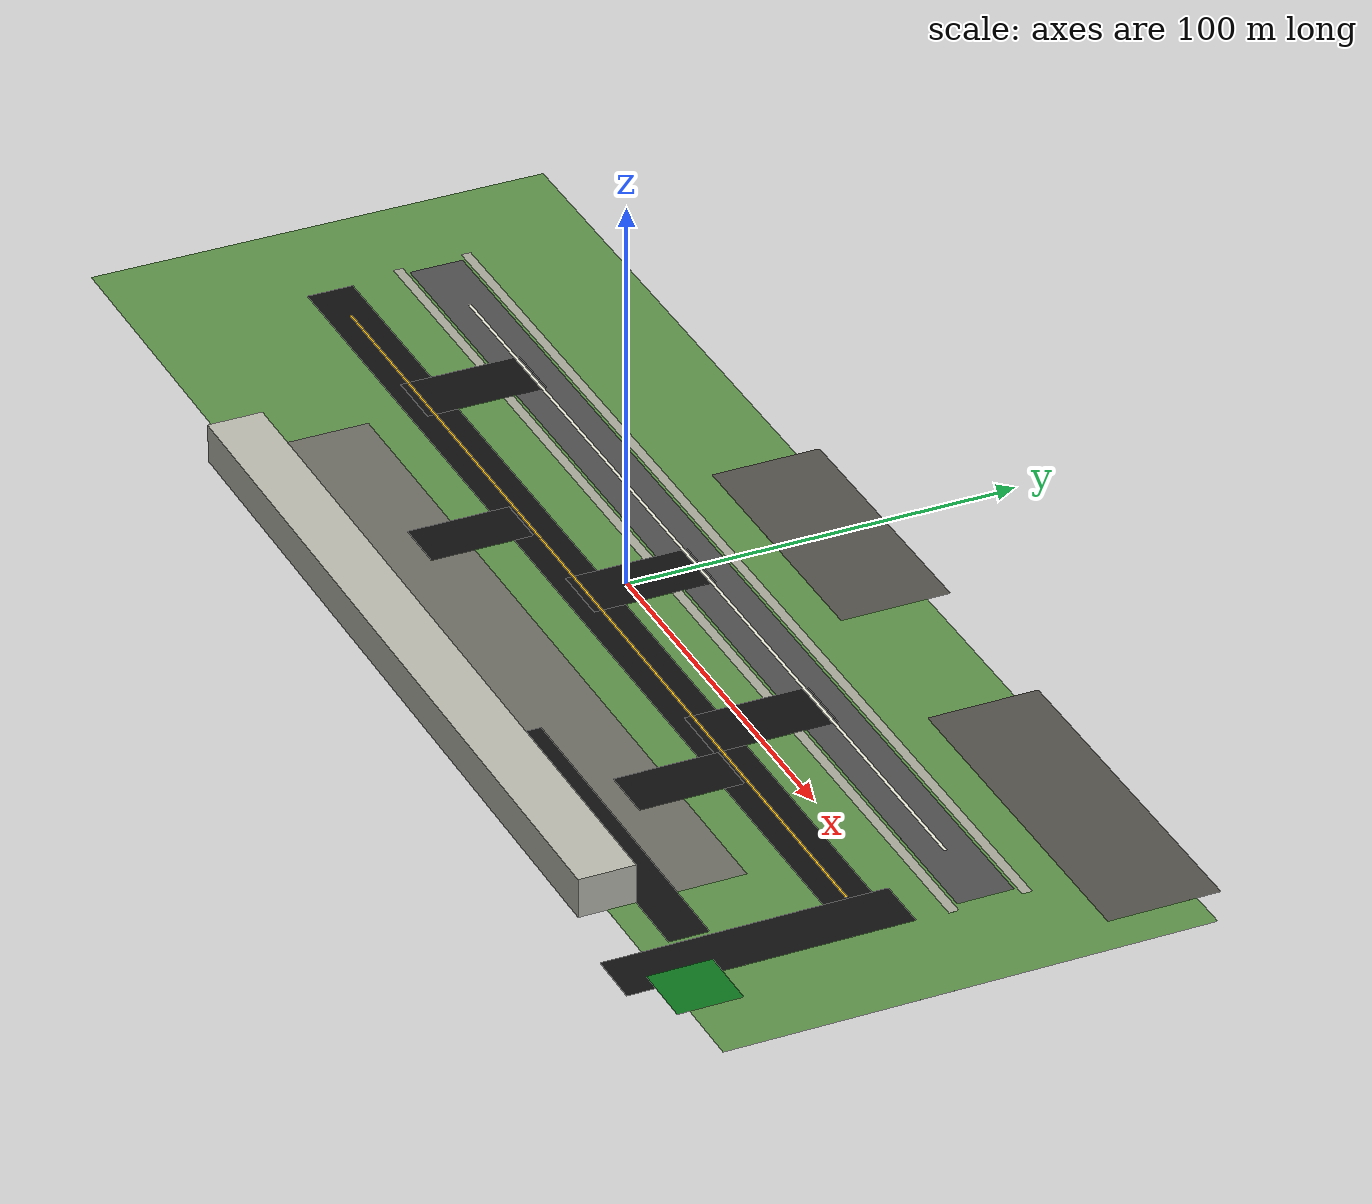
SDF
<sdf version="1.6">
 <world name="airport_search_field">
  <light name="sun" type="directional">
   <pose>0 0 90 0 0 0</pose>
   <diffuse>0.85 0.85 0.8 1</diffuse>
   <specular>0.2 0.2 0.2 1</specular>
   <attenuation>
    <range>1000</range>
    <constant>0.9</constant>
    <linear>0.01</linear>
    <quadratic>0.001</quadratic>
   </attenuation>
   <direction>-0.4 0.25 -0.9</direction>
  </light>
  <plugin name="gazebo_ros_state" filename="libgazebo_ros_state.so">
   <ros><namespace>/gazebo</namespace></ros>
   <update_rate>20.0</update_rate>
  </plugin>
  <model name="airport_flat_field">
   <static>true</static>
   <link name="link">
    <visual name="grass_visual">
     <pose>0 0 0.008 0 0 0</pose>
     <geometry><box><size>360 120 0.001</size></box></geometry>
     <material><ambient>0.32 0.48 0.24 1</ambient><diffuse>0.36 0.56 0.28 1</diffuse></material>
    </visual>
    <collision name="flat_ground_collision"><geometry><box><size>360 150 0.02</size></box></geometry></collision>
   </link>
  </model>
  <model name="runway_04_22">
   <static>true</static>
   <pose>0 18 0.005 0 0 0</pose>
   <link name="link">
    <visual name="runway_visual">
     <pose>0 0 0.0065 0 0 0</pose>
     <geometry><box><size>300 14 0.001</size></box></geometry>
     <material>
      <script>
       <uri>model://asphalt_plane/materials/scripts</uri>
       <uri>model://asphalt_plane/materials/textures</uri>
       <name>vrc/asphalt</name>
      </script>
     </material>
    </visual>
    <collision name="runway_collision"><geometry><box><size>300 14 0.01</size></box></geometry></collision>
   </link>
  </model>
  <model name="runway_centerline">
   <static>true</static>
   <pose>0 18 0.0155 0 0 0</pose>
   <link name="link">
    <visual name="line">
     <geometry><box><size>260 0.8 0.001</size></box></geometry>
     <material><ambient>0.92 0.92 0.85 1</ambient><diffuse>0.92 0.92 0.85 1</diffuse></material>
    </visual>
   </link>
  </model>
  <model name="runway_left_shoulder">
   <static>true</static>
   <pose>0 27 0.0115 0 0 0</pose>
   <link name="link">
    <visual name="visual">
     <geometry><box><size>305 2.5 0.001</size></box></geometry>
     <material><ambient>0.65 0.65 0.6 1</ambient><diffuse>0.65 0.65 0.6 1</diffuse></material>
    </visual>
   </link>
  </model>
  <model name="runway_right_shoulder">
   <static>true</static>
   <pose>0 9 0.0115 0 0 0</pose>
   <link name="link">
    <visual name="visual">
     <geometry><box><size>305 2.5 0.001</size></box></geometry>
     <material><ambient>0.65 0.65 0.6 1</ambient><diffuse>0.65 0.65 0.6 1</diffuse></material>
    </visual>
   </link>
  </model>
  <model name="parallel_taxiway">
   <static>true</static>
   <pose>0 -10 0.005 0 0 0</pose>
   <link name="link">
    <visual name="taxiway_visual">
     <pose>0 0 0.0065 0 0 0</pose>
     <geometry><box><size>300 12 0.001</size></box></geometry>
     <material><ambient>0.055 0.055 0.055 1</ambient><diffuse>0.055 0.055 0.055 1</diffuse></material>
    </visual>
    <collision name="taxiway_collision"><geometry><box><size>300 12 0.01</size></box></geometry></collision>
   </link>
  </model>
  <model name="taxiway_yellow_line">
   <static>true</static>
   <pose>0 -10 0.0155 0 0 0</pose>
   <link name="link">
    <visual name="line">
     <geometry><box><size>275 0.6 0.001</size></box></geometry>
     <material><ambient>0.95 0.72 0.02 1</ambient><diffuse>0.95 0.72 0.02 1</diffuse></material>
    </visual>
   </link>
  </model>
  <model name="north_runway_exit">
   <static>true</static>
   <pose>-95 3.5 0.005 0 0 0</pose>
   <link name="link">
    <visual name="visual">
     <pose>0 0 0.0085 0 0 0</pose>
     <geometry><box><size>16 31 0.001</size></box></geometry>
     <material><ambient>0.055 0.055 0.055 1</ambient><diffuse>0.055 0.055 0.055 1</diffuse></material>
    </visual>
    <collision name="collision"><geometry><box><size>16 31 0.01</size></box></geometry></collision>
   </link>
  </model>
  <model name="south_runway_exit">
   <static>true</static>
   <pose>65 3.5 0.005 0 0 0</pose>
   <link name="link">
    <visual name="visual">
     <pose>0 0 0.0085 0 0 0</pose>
     <geometry><box><size>16 31 0.001</size></box></geometry>
     <material><ambient>0.055 0.055 0.055 1</ambient><diffuse>0.055 0.055 0.055 1</diffuse></material>
    </visual>
    <collision name="collision"><geometry><box><size>16 31 0.01</size></box></geometry></collision>
   </link>
  </model>
  <model name="center_runway_exit">
   <static>true</static>
   <pose>0 3.5 0.005 0 0 0</pose>
   <link name="link">
    <visual name="visual">
     <pose>0 0 0.0085 0 0 0</pose>
     <geometry><box><size>16 31 0.001</size></box></geometry>
     <material><ambient>0.055 0.055 0.055 1</ambient><diffuse>0.055 0.055 0.055 1</diffuse></material>
    </visual>
    <collision name="collision"><geometry><box><size>16 31 0.01</size></box></geometry></collision>
   </link>
  </model>
  <model name="main_apron">
   <static>true</static>
   <pose>15 -37 0.005 0 0 0</pose>
   <link name="link">
    <visual name="visual">
     <pose>0 0 0.0065 0 0 0</pose>
     <geometry><box><size>210 22 0.001</size></box></geometry>
     <material><ambient>0.42 0.42 0.39 1</ambient><diffuse>0.42 0.42 0.39 1</diffuse></material>
    </visual>
    <collision name="collision"><geometry><box><size>210 22 0.01</size></box></geometry></collision>
   </link>
  </model>
  <model name="terminal_connector_1">
   <static>true</static>
   <pose>-35 -24 0.005 0 0 0</pose>
   <link name="link">
    <visual name="visual">
     <pose>0 0 0.0085 0 0 0</pose>
     <geometry><box><size>14 26 0.001</size></box></geometry>
     <material><ambient>0.055 0.055 0.055 1</ambient><diffuse>0.055 0.055 0.055 1</diffuse></material>
    </visual>
    <collision name="collision"><geometry><box><size>14 26 0.01</size></box></geometry></collision>
   </link>
  </model>
  <model name="terminal_connector_2">
   <static>true</static>
   <pose>80 -24 0.005 0 0 0</pose>
   <link name="link">
    <visual name="visual">
     <pose>0 0 0.0085 0 0 0</pose>
     <geometry><box><size>14 26 0.001</size></box></geometry>
     <material><ambient>0.055 0.055 0.055 1</ambient><diffuse>0.055 0.055 0.055 1</diffuse></material>
    </visual>
    <collision name="collision"><geometry><box><size>14 26 0.01</size></box></geometry></collision>
   </link>
  </model>
  <model name="terminal_building">
   <static>true</static>
   <pose>15 -60 5 0 0 0</pose>
   <link name="link">
    <visual name="visual">
     <geometry><box><size>210 14 10</size></box></geometry>
     <material><ambient>0.72 0.72 0.68 1</ambient><diffuse>0.72 0.72 0.68 1</diffuse></material>
    </visual>
    <collision name="collision"><geometry><box><size>210 14 10</size></box></geometry></collision>
   </link>
  </model>
  <model name="right_service_road">
   <static>true</static>
   <pose>145 -35 0.005 0 0 0</pose>
   <link name="link">
    <visual name="visual">
     <pose>0 0 0.0085 0 0 0</pose>
     <geometry><box><size>14 70 0.001</size></box></geometry>
     <material><ambient>0.06 0.06 0.06 1</ambient><diffuse>0.06 0.06 0.06 1</diffuse></material>
    </visual>
    <collision name="collision"><geometry><box><size>14 70 0.01</size></box></geometry></collision>
   </link>
  </model>
  <model name="apron_to_service_road">
   <static>true</static>
   <pose>92 -48 0.005 0 0 0</pose>
   <link name="link">
    <visual name="visual">
     <pose>0 0 0.0085 0 0 0</pose>
     <geometry><box><size>90 10 0.001</size></box></geometry>
     <material><ambient>0.06 0.06 0.06 1</ambient><diffuse>0.06 0.06 0.06 1</diffuse></material>
    </visual>
    <collision name="collision"><geometry><box><size>90 10 0.01</size></box></geometry></collision>
   </link>
  </model>
  <model name="fuel_depot_pad">
   <static>true</static>
   <pose>0 52 0.005 0 0 0</pose>
   <link name="link">
    <visual name="visual">
     <pose>0 0 0.0065 0 0 0</pose>
     <geometry><box><size>70 28 0.001</size></box></geometry>
     <material><ambient>0.32 0.31 0.28 1</ambient><diffuse>0.32 0.31 0.28 1</diffuse></material>
    </visual>
    <collision name="collision"><geometry><box><size>70 28 0.01</size></box></geometry></collision>
   </link>
  </model>
  <model name="fire_station_pad">
   <static>true</static>
   <pose>125 52 0.005 0 0 0</pose>
   <link name="link">
    <visual name="visual">
     <pose>0 0 0.0065 0 0 0</pose>
     <geometry><box><size>90 28 0.001</size></box></geometry>
     <material><ambient>0.32 0.31 0.28 1</ambient><diffuse>0.32 0.31 0.28 1</diffuse></material>
    </visual>
    <collision name="collision"><geometry><box><size>90 28 0.01</size></box></geometry></collision>
   </link>
  </model>
  <model name="robot_start_zone">
   <static>true</static>
   <pose>155 -55 0.0155 0 0 0</pose>
   <link name="link">
    <visual name="visual">
     <geometry><box><size>16 16 0.001</size></box></geometry>
     <material><ambient>0.03 0.2 0.06 1</ambient><diffuse>0.04 0.45 0.1 1</diffuse></material>
    </visual>
   </link>
  </model>
 </world>
</sdf>
